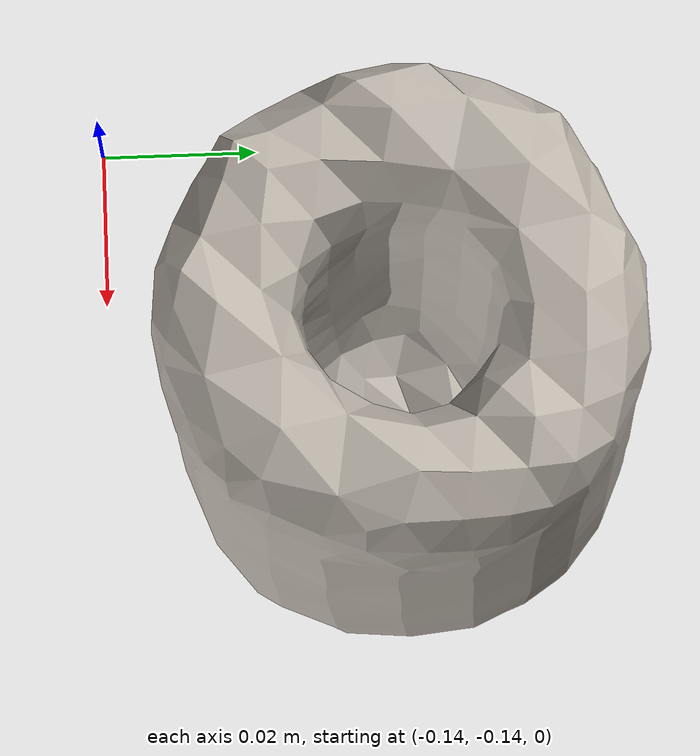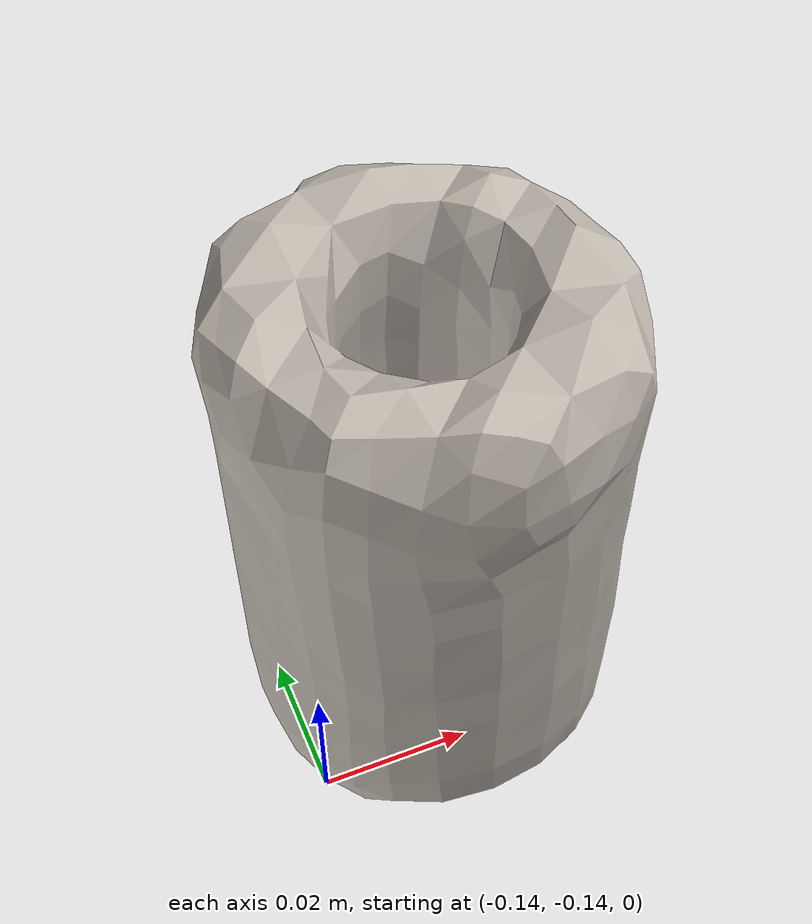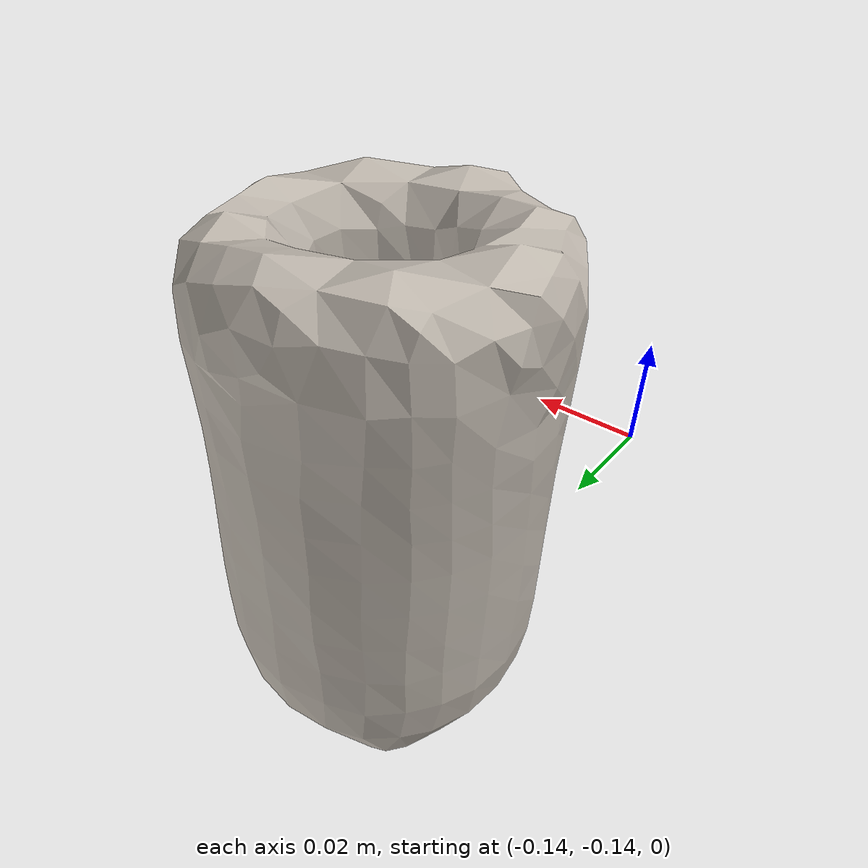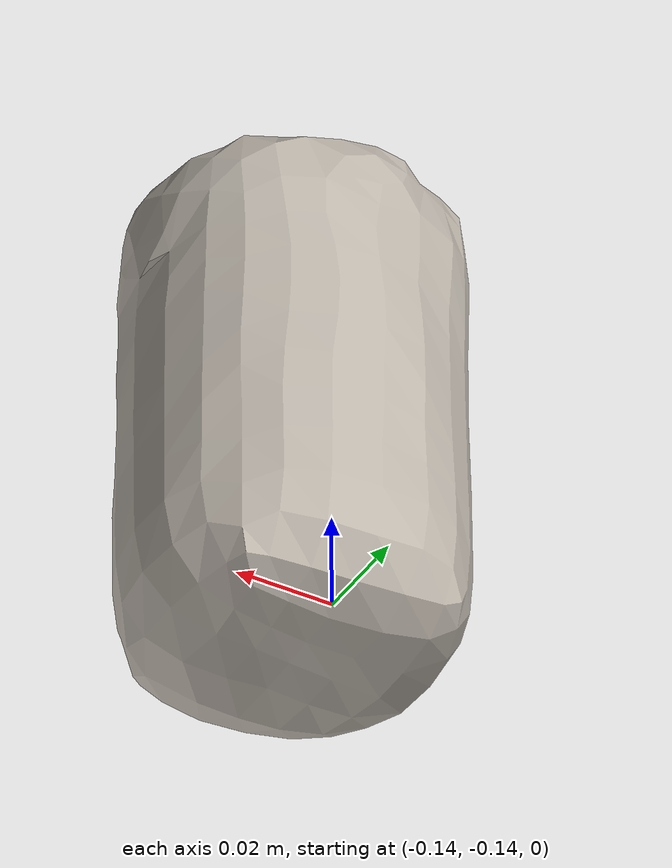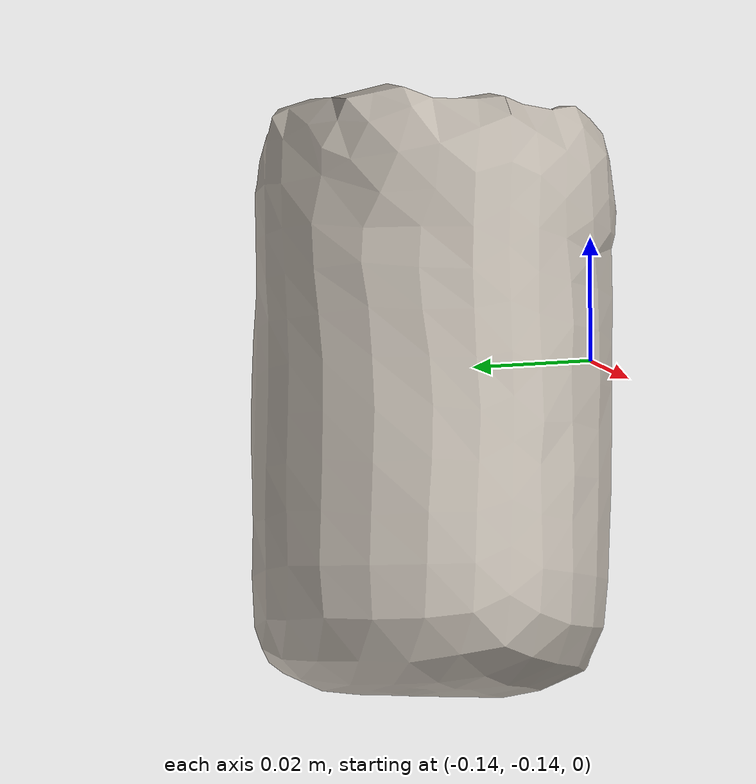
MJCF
<mujoco model="cup_BIA_Cordon_Bleu_White_Porcelain_Utensil_Holder_900028_M">
  <asset>
    <mesh file="meshes/cup_BIA_Cordon_Bleu_White_Porcelain_Utensil_Holder_900028_M.stl" name="cup_mesh" scale="0.584548181509159 0.584548181509159 0.584548181509159"/>
    <texture type="cube" file="/home/jbw/Projects/gc-reorientation/bin_env/assets/textures/ceramic.png" rgb1="1 1 1" name="tex-cup"/>
    <material name="cup" reflectance="0.5" texrepeat="3 3" texture="tex-cup"/>
  </asset>
  <worldbody>
    <body>
      <body name="object">
        <geom pos="-0.10993015770566407 -0.101666328118746 -0.0022892948392563284" quat="1 0 0 0" mesh="cup_mesh" type="mesh" solref="0.02 1" density="0" friction="1.0 1.0 1.0" material="cup" group="0" condim="4"/>
      </body>
      <site rgba="0 0 0 0" size="0.005" pos="0 0 -0.05" name="bottom_site"/>
      <site rgba="0 0 0 0" size="0.005" pos="0 0 0.03" name="top_site"/>
      <site rgba="0 0 0 0" size="0.005" pos="0.02 0.015 0" name="horizontal_radius_site"/>
    </body>
  </worldbody>
</mujoco>
